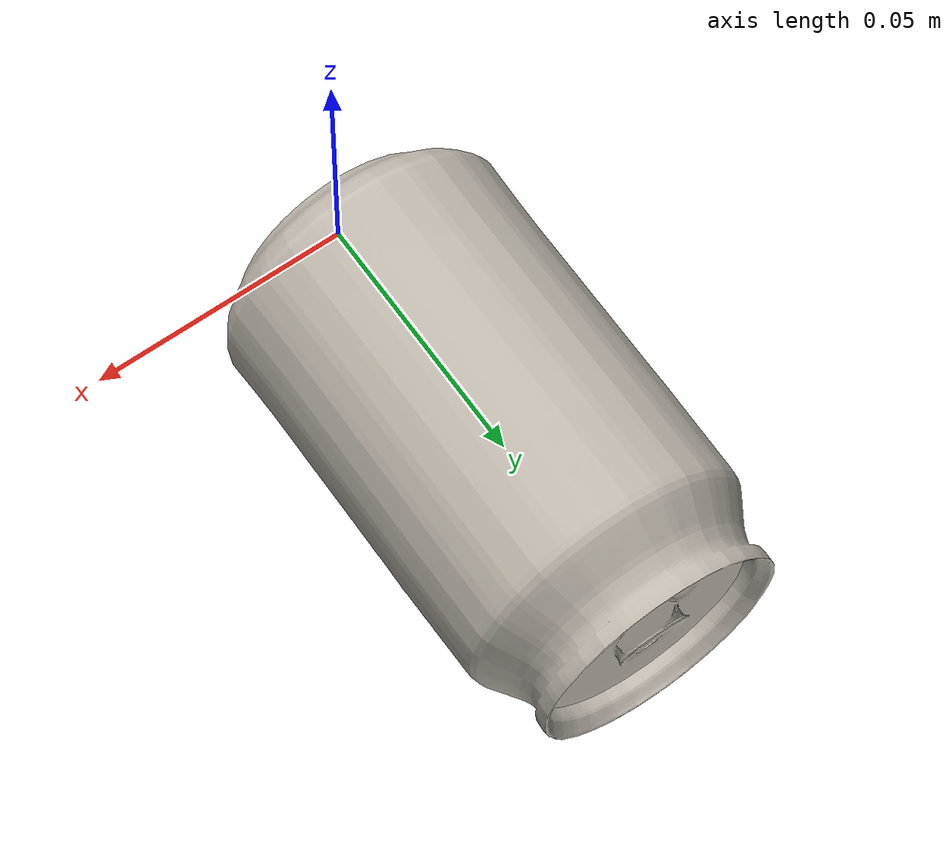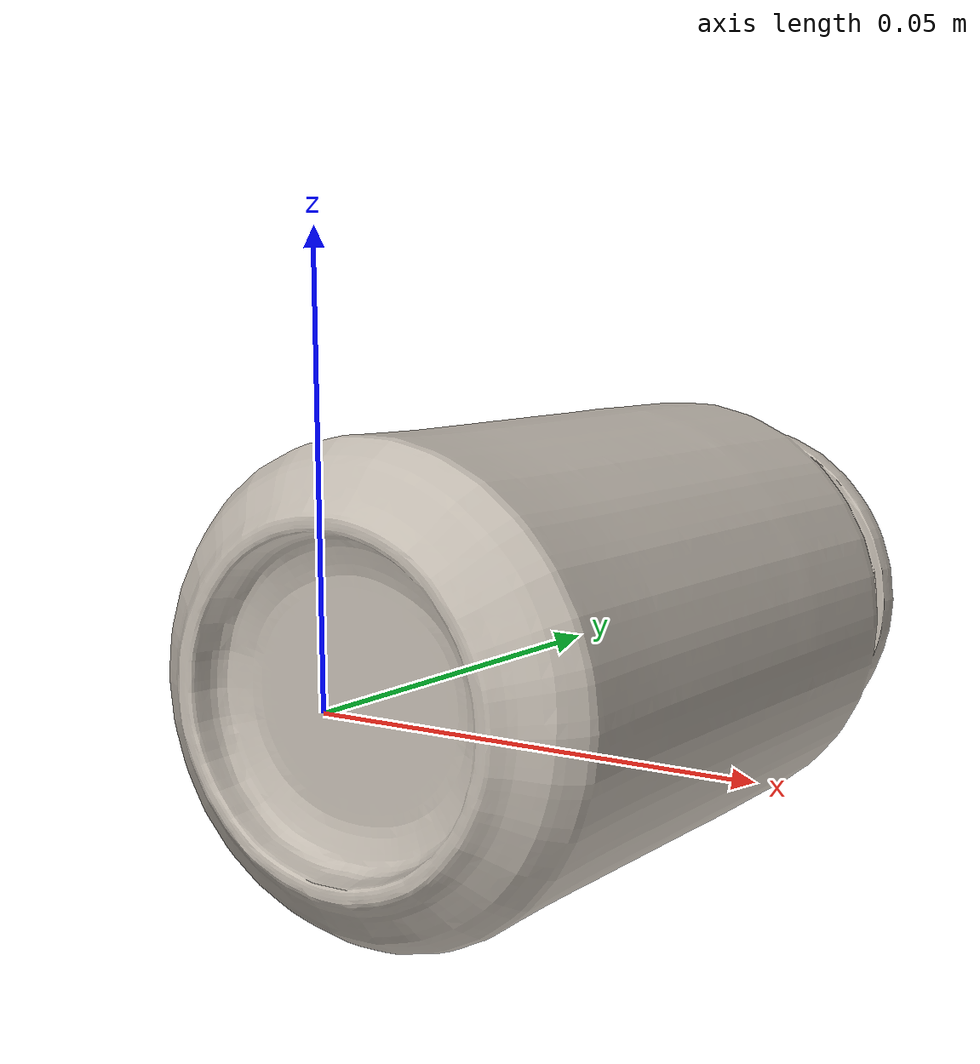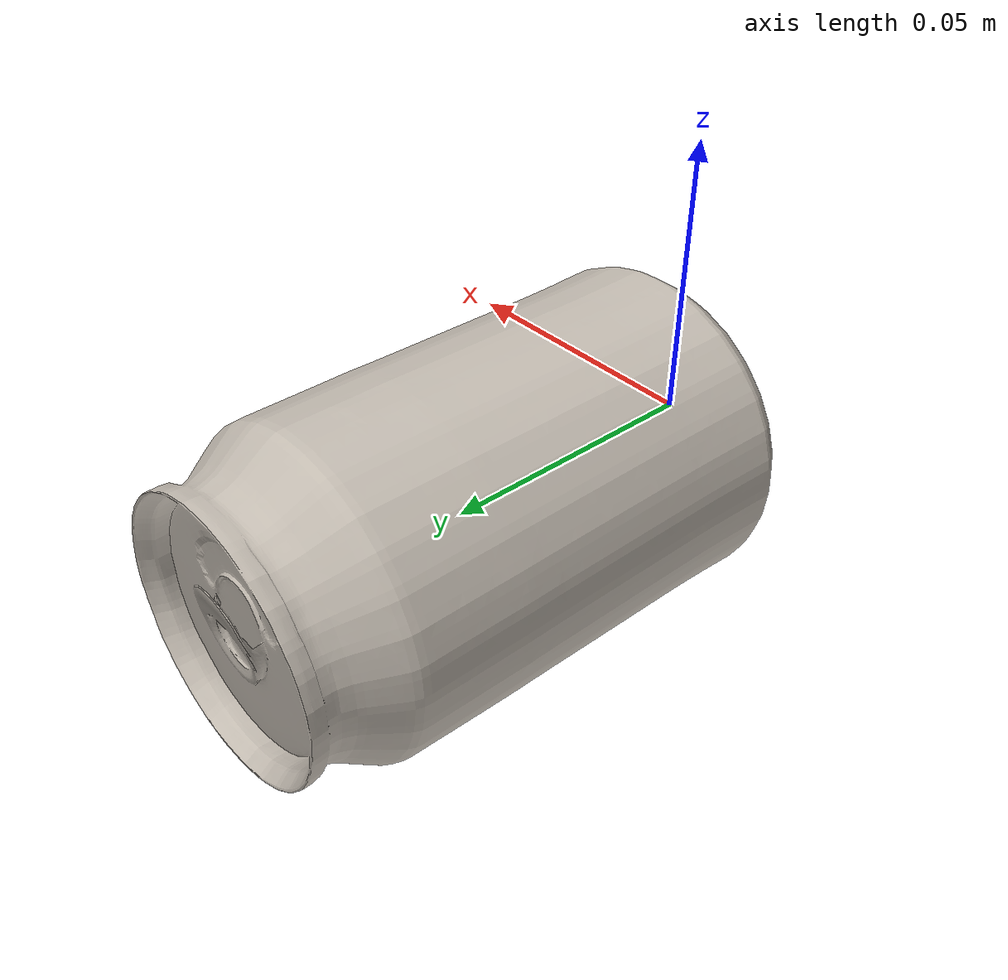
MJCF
<mujoco model="task6_can_base3">
  <compiler meshdir="../../" texturedir="../../"/>
  <asset>
    <mesh name="can_visual_mesh" file="converted/obj_071_can/480dcfcf2ff157f1/base3.obj" scale="0.05 0.05 0.05"/>
    <mesh name="can_collision_mesh" file="converted/obj_071_can/10ed6810f62b7a67/base3.obj" scale="0.05 0.05 0.05"/>
    <texture name="can_texture" type="2d" file="textures/obj_071_can/baseobj_3_480dcfcf2ff157f1_00_raw.png"/>
    <material name="can_material" rgba="1 1 1 1" specular="0.2" shininess="0.35" texture="can_texture"/>
  </asset>
  <worldbody>
    <body name="object">
      <inertial pos="0.000213451 0.0492138 0.000202088"
                quat="0.686331 0.683069 0.173175 -0.179933"
                mass="0.380002942"
                diaginertia="0.000358843 0.000353224 0.000128307"/>
      <geom name="can_visual" type="mesh" mesh="can_visual_mesh"
            material="can_material" contype="0" conaffinity="0" group="1" mass="0"/>
      <geom name="can_collision" type="mesh" mesh="can_collision_mesh"
            contype="1" conaffinity="1" condim="4"
            friction="1 0.04 0.015" rgba="0 0 0 0" group="3"/>
    </body>
  </worldbody>
</mujoco>
